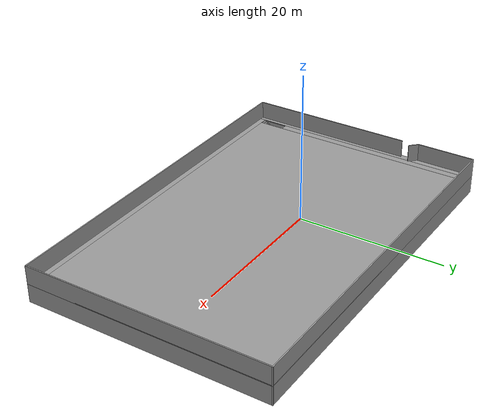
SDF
<?xml version='1.0'?>
<sdf version='1.7'>
  <model name='cangku'>
    <pose>6.96758 -0.634959 0 0 -0 0</pose>
    <link name='Floor_0'>
      <pose>-0 -0 2.5 0 -0 0</pose>
      <visual name='Floor_0_Visual_0'>
        <pose>-24.4146 0 0.05 0 -0 0</pose>
        <geometry>
          <box>
            <size>0.951851 32.75 0.1</size>
          </box>
        </geometry>
        <material>
          <script>
            <uri>file://media/materials/scripts/gazebo.material</uri>
            <name>Gazebo/Grey</name>
          </script>
          <ambient>1 1 1 1</ambient>
        </material>
        <meta>
          <layer>1</layer>
        </meta>
      </visual>
      <collision name='Floor_0_Collision_0'>
        <geometry>
          <box>
            <size>0.951851 32.75 0.1</size>
          </box>
        </geometry>
        <pose>-24.4146 0 0.05 0 -0 0</pose>
      </collision>
      <visual name='Floor_0_Visual_1'>
        <pose>0.475926 -15.9237 0.05 0 -0 0</pose>
        <geometry>
          <box>
            <size>48.8292 0.902595 0.1</size>
          </box>
        </geometry>
        <material>
          <script>
            <uri>file://media/materials/scripts/gazebo.material</uri>
            <name>Gazebo/Grey</name>
          </script>
          <ambient>1 1 1 1</ambient>
        </material>
        <meta>
          <layer>1</layer>
        </meta>
      </visual>
      <collision name='Floor_0_Collision_1'>
        <geometry>
          <box>
            <size>48.8292 0.902595 0.1</size>
          </box>
        </geometry>
        <pose>0.475926 -15.9237 0.05 0 -0 0</pose>
      </collision>
      <visual name='Floor_0_Visual_2'>
        <pose>0.975926 0.451298 0.05 0 -0 0</pose>
        <geometry>
          <box>
            <size>47.8292 31.8474 0.1</size>
          </box>
        </geometry>
        <material>
          <script>
            <uri>file://media/materials/scripts/gazebo.material</uri>
            <name>Gazebo/Grey</name>
          </script>
          <ambient>1 1 1 1</ambient>
        </material>
        <meta>
          <layer>1</layer>
        </meta>
      </visual>
      <collision name='Floor_0_Collision_2'>
        <geometry>
          <box>
            <size>47.8292 31.8474 0.1</size>
          </box>
        </geometry>
        <pose>0.975926 0.451298 0.05 0 -0 0</pose>
      </collision>
      <visual name='Floor_0_Visual_3'>
        <pose>-23.4387 2.2013 0.05 0 -0 0</pose>
        <geometry>
          <box>
            <size>1 28.3474 0.1</size>
          </box>
        </geometry>
        <material>
          <script>
            <uri>file://media/materials/scripts/gazebo.material</uri>
            <name>Gazebo/Grey</name>
          </script>
          <ambient>1 1 1 1</ambient>
        </material>
        <meta>
          <layer>1</layer>
        </meta>
      </visual>
      <collision name='Floor_0_Collision_3'>
        <geometry>
          <box>
            <size>1 28.3474 0.1</size>
          </box>
        </geometry>
        <pose>-23.4387 2.2013 0.05 0 -0 0</pose>
      </collision>
    </link>
    <link name='Stairs_0'>
      <visual name='Stairs_0_Visual_0'>
        <pose>-23.4387 -12.0891 0.083333 0 -0 0</pose>
        <geometry>
          <box>
            <size>1 0.233333 0.166667</size>
          </box>
        </geometry>
        <material>
          <script>
            <uri>file://media/materials/scripts/gazebo.material</uri>
            <name>Gazebo/Grey</name>
          </script>
          <ambient>1 1 1 1</ambient>
        </material>
        <meta>
          <layer>0</layer>
        </meta>
      </visual>
      <collision name='Stairs_0_Collision_0'>
        <geometry>
          <box>
            <size>1 0.233333 0.166667</size>
          </box>
        </geometry>
        <pose>-23.4387 -12.0891 0.083333 0 -0 0</pose>
      </collision>
      <visual name='Stairs_0_Visual_1'>
        <pose>-23.4387 -12.3224 0.25 0 -0 0</pose>
        <geometry>
          <box>
            <size>1 0.233333 0.166667</size>
          </box>
        </geometry>
        <material>
          <script>
            <uri>file://media/materials/scripts/gazebo.material</uri>
            <name>Gazebo/Grey</name>
          </script>
          <ambient>1 1 1 1</ambient>
        </material>
        <meta>
          <layer>0</layer>
        </meta>
      </visual>
      <collision name='Stairs_0_Collision_1'>
        <geometry>
          <box>
            <size>1 0.233333 0.166667</size>
          </box>
        </geometry>
        <pose>-23.4387 -12.3224 0.25 0 -0 0</pose>
      </collision>
      <visual name='Stairs_0_Visual_2'>
        <pose>-23.4387 -12.5557 0.416667 0 -0 0</pose>
        <geometry>
          <box>
            <size>1 0.233333 0.166667</size>
          </box>
        </geometry>
        <material>
          <script>
            <uri>file://media/materials/scripts/gazebo.material</uri>
            <name>Gazebo/Grey</name>
          </script>
          <ambient>1 1 1 1</ambient>
        </material>
        <meta>
          <layer>0</layer>
        </meta>
      </visual>
      <collision name='Stairs_0_Collision_2'>
        <geometry>
          <box>
            <size>1 0.233333 0.166667</size>
          </box>
        </geometry>
        <pose>-23.4387 -12.5557 0.416667 0 -0 0</pose>
      </collision>
      <visual name='Stairs_0_Visual_3'>
        <pose>-23.4387 -12.7891 0.583333 0 -0 0</pose>
        <geometry>
          <box>
            <size>1 0.233333 0.166667</size>
          </box>
        </geometry>
        <material>
          <script>
            <uri>file://media/materials/scripts/gazebo.material</uri>
            <name>Gazebo/Grey</name>
          </script>
          <ambient>1 1 1 1</ambient>
        </material>
        <meta>
          <layer>0</layer>
        </meta>
      </visual>
      <collision name='Stairs_0_Collision_3'>
        <geometry>
          <box>
            <size>1 0.233333 0.166667</size>
          </box>
        </geometry>
        <pose>-23.4387 -12.7891 0.583333 0 -0 0</pose>
      </collision>
      <visual name='Stairs_0_Visual_4'>
        <pose>-23.4387 -13.0224 0.75 0 -0 0</pose>
        <geometry>
          <box>
            <size>1 0.233333 0.166667</size>
          </box>
        </geometry>
        <material>
          <script>
            <uri>file://media/materials/scripts/gazebo.material</uri>
            <name>Gazebo/Grey</name>
          </script>
          <ambient>1 1 1 1</ambient>
        </material>
        <meta>
          <layer>0</layer>
        </meta>
      </visual>
      <collision name='Stairs_0_Collision_4'>
        <geometry>
          <box>
            <size>1 0.233333 0.166667</size>
          </box>
        </geometry>
        <pose>-23.4387 -13.0224 0.75 0 -0 0</pose>
      </collision>
      <visual name='Stairs_0_Visual_5'>
        <pose>-23.4387 -13.2557 0.916667 0 -0 0</pose>
        <geometry>
          <box>
            <size>1 0.233333 0.166667</size>
          </box>
        </geometry>
        <material>
          <script>
            <uri>file://media/materials/scripts/gazebo.material</uri>
            <name>Gazebo/Grey</name>
          </script>
          <ambient>1 1 1 1</ambient>
        </material>
        <meta>
          <layer>0</layer>
        </meta>
      </visual>
      <collision name='Stairs_0_Collision_5'>
        <geometry>
          <box>
            <size>1 0.233333 0.166667</size>
          </box>
        </geometry>
        <pose>-23.4387 -13.2557 0.916667 0 -0 0</pose>
      </collision>
      <visual name='Stairs_0_Visual_6'>
        <pose>-23.4387 -13.4891 1.08333 0 -0 0</pose>
        <geometry>
          <box>
            <size>1 0.233333 0.166667</size>
          </box>
        </geometry>
        <material>
          <script>
            <uri>file://media/materials/scripts/gazebo.material</uri>
            <name>Gazebo/Grey</name>
          </script>
          <ambient>1 1 1 1</ambient>
        </material>
        <meta>
          <layer>0</layer>
        </meta>
      </visual>
      <collision name='Stairs_0_Collision_6'>
        <geometry>
          <box>
            <size>1 0.233333 0.166667</size>
          </box>
        </geometry>
        <pose>-23.4387 -13.4891 1.08333 0 -0 0</pose>
      </collision>
      <visual name='Stairs_0_Visual_7'>
        <pose>-23.4387 -13.7224 1.25 0 -0 0</pose>
        <geometry>
          <box>
            <size>1 0.233333 0.166667</size>
          </box>
        </geometry>
        <material>
          <script>
            <uri>file://media/materials/scripts/gazebo.material</uri>
            <name>Gazebo/Grey</name>
          </script>
          <ambient>1 1 1 1</ambient>
        </material>
        <meta>
          <layer>0</layer>
        </meta>
      </visual>
      <collision name='Stairs_0_Collision_7'>
        <geometry>
          <box>
            <size>1 0.233333 0.166667</size>
          </box>
        </geometry>
        <pose>-23.4387 -13.7224 1.25 0 -0 0</pose>
      </collision>
      <visual name='Stairs_0_Visual_8'>
        <pose>-23.4387 -13.9557 1.41667 0 -0 0</pose>
        <geometry>
          <box>
            <size>1 0.233333 0.166667</size>
          </box>
        </geometry>
        <material>
          <script>
            <uri>file://media/materials/scripts/gazebo.material</uri>
            <name>Gazebo/Grey</name>
          </script>
          <ambient>1 1 1 1</ambient>
        </material>
        <meta>
          <layer>0</layer>
        </meta>
      </visual>
      <collision name='Stairs_0_Collision_8'>
        <geometry>
          <box>
            <size>1 0.233333 0.166667</size>
          </box>
        </geometry>
        <pose>-23.4387 -13.9557 1.41667 0 -0 0</pose>
      </collision>
      <visual name='Stairs_0_Visual_9'>
        <pose>-23.4387 -14.1891 1.58333 0 -0 0</pose>
        <geometry>
          <box>
            <size>1 0.233333 0.166667</size>
          </box>
        </geometry>
        <material>
          <script>
            <uri>file://media/materials/scripts/gazebo.material</uri>
            <name>Gazebo/Grey</name>
          </script>
          <ambient>1 1 1 1</ambient>
        </material>
        <meta>
          <layer>0</layer>
        </meta>
      </visual>
      <collision name='Stairs_0_Collision_9'>
        <geometry>
          <box>
            <size>1 0.233333 0.166667</size>
          </box>
        </geometry>
        <pose>-23.4387 -14.1891 1.58333 0 -0 0</pose>
      </collision>
      <visual name='Stairs_0_Visual_10'>
        <pose>-23.4387 -14.4224 1.75 0 -0 0</pose>
        <geometry>
          <box>
            <size>1 0.233333 0.166667</size>
          </box>
        </geometry>
        <material>
          <script>
            <uri>file://media/materials/scripts/gazebo.material</uri>
            <name>Gazebo/Grey</name>
          </script>
          <ambient>1 1 1 1</ambient>
        </material>
        <meta>
          <layer>0</layer>
        </meta>
      </visual>
      <collision name='Stairs_0_Collision_10'>
        <geometry>
          <box>
            <size>1 0.233333 0.166667</size>
          </box>
        </geometry>
        <pose>-23.4387 -14.4224 1.75 0 -0 0</pose>
      </collision>
      <visual name='Stairs_0_Visual_11'>
        <pose>-23.4387 -14.6557 1.91667 0 -0 0</pose>
        <geometry>
          <box>
            <size>1 0.233333 0.166667</size>
          </box>
        </geometry>
        <material>
          <script>
            <uri>file://media/materials/scripts/gazebo.material</uri>
            <name>Gazebo/Grey</name>
          </script>
          <ambient>1 1 1 1</ambient>
        </material>
        <meta>
          <layer>0</layer>
        </meta>
      </visual>
      <collision name='Stairs_0_Collision_11'>
        <geometry>
          <box>
            <size>1 0.233333 0.166667</size>
          </box>
        </geometry>
        <pose>-23.4387 -14.6557 1.91667 0 -0 0</pose>
      </collision>
      <visual name='Stairs_0_Visual_12'>
        <pose>-23.4387 -14.8891 2.08333 0 -0 0</pose>
        <geometry>
          <box>
            <size>1 0.233333 0.166667</size>
          </box>
        </geometry>
        <material>
          <script>
            <uri>file://media/materials/scripts/gazebo.material</uri>
            <name>Gazebo/Grey</name>
          </script>
          <ambient>1 1 1 1</ambient>
        </material>
        <meta>
          <layer>0</layer>
        </meta>
      </visual>
      <collision name='Stairs_0_Collision_12'>
        <geometry>
          <box>
            <size>1 0.233333 0.166667</size>
          </box>
        </geometry>
        <pose>-23.4387 -14.8891 2.08333 0 -0 0</pose>
      </collision>
      <visual name='Stairs_0_Visual_13'>
        <pose>-23.4387 -15.1224 2.25 0 -0 0</pose>
        <geometry>
          <box>
            <size>1 0.233333 0.166667</size>
          </box>
        </geometry>
        <material>
          <script>
            <uri>file://media/materials/scripts/gazebo.material</uri>
            <name>Gazebo/Grey</name>
          </script>
          <ambient>1 1 1 1</ambient>
        </material>
        <meta>
          <layer>0</layer>
        </meta>
      </visual>
      <collision name='Stairs_0_Collision_13'>
        <geometry>
          <box>
            <size>1 0.233333 0.166667</size>
          </box>
        </geometry>
        <pose>-23.4387 -15.1224 2.25 0 -0 0</pose>
      </collision>
      <visual name='Stairs_0_Visual_14'>
        <pose>-23.4387 -15.3557 2.41667 0 -0 0</pose>
        <geometry>
          <box>
            <size>1 0.233333 0.166667</size>
          </box>
        </geometry>
        <material>
          <script>
            <uri>file://media/materials/scripts/gazebo.material</uri>
            <name>Gazebo/Grey</name>
          </script>
          <ambient>1 1 1 1</ambient>
        </material>
        <meta>
          <layer>0</layer>
        </meta>
      </visual>
      <collision name='Stairs_0_Collision_14'>
        <geometry>
          <box>
            <size>1 0.233333 0.166667</size>
          </box>
        </geometry>
        <pose>-23.4387 -15.3557 2.41667 0 -0 0</pose>
      </collision>
    </link>
    <link name='Wall_10'>
      <collision name='Wall_10_Collision'>
        <geometry>
          <box>
            <size>49.5 0.15 2.5</size>
          </box>
        </geometry>
        <pose>0 0 1.25 0 -0 0</pose>
      </collision>
      <visual name='Wall_10_Visual'>
        <pose>0 0 1.25 0 -0 0</pose>
        <geometry>
          <box>
            <size>49.5 0.15 2.5</size>
          </box>
        </geometry>
        <material>
          <script>
            <uri>file://media/materials/scripts/gazebo.material</uri>
            <name>Gazebo/Grey</name>
          </script>
          <ambient>1 1 1 1</ambient>
        </material>
        <meta>
          <layer>1</layer>
        </meta>
      </visual>
      <pose>0.140532 -16.3 2.5 0 -0 0</pose>
    </link>
    <link name='Wall_11'>
      <collision name='Wall_11_Collision'>
        <geometry>
          <box>
            <size>32.75 0.15 2.5</size>
          </box>
        </geometry>
        <pose>0 0 1.25 0 -0 0</pose>
      </collision>
      <visual name='Wall_11_Visual'>
        <pose>0 0 1.25 0 -0 0</pose>
        <geometry>
          <box>
            <size>32.75 0.15 2.5</size>
          </box>
        </geometry>
        <material>
          <script>
            <uri>file://media/materials/scripts/gazebo.material</uri>
            <name>Gazebo/Grey</name>
          </script>
          <ambient>1 1 1 1</ambient>
        </material>
        <meta>
          <layer>1</layer>
        </meta>
      </visual>
      <pose>24.8155 -0 2.5 0 -0 1.5708</pose>
    </link>
    <link name='Wall_12'>
      <collision name='Wall_12_Collision'>
        <geometry>
          <box>
            <size>49.75 0.15 2.5</size>
          </box>
        </geometry>
        <pose>0 0 1.25 0 -0 0</pose>
      </collision>
      <visual name='Wall_12_Visual'>
        <pose>0 0 1.25 0 -0 0</pose>
        <geometry>
          <box>
            <size>49.75 0.15 2.5</size>
          </box>
        </geometry>
        <material>
          <script>
            <uri>file://media/materials/scripts/gazebo.material</uri>
            <name>Gazebo/Grey</name>
          </script>
          <ambient>1 1 1 1</ambient>
        </material>
        <meta>
          <layer>1</layer>
        </meta>
      </visual>
      <pose>0.015532 16.3 2.5 0 -0 3.14159</pose>
    </link>
    <link name='Wall_13'>
      <collision name='Wall_13_Collision'>
        <geometry>
          <box>
            <size>8 0.15 2.5</size>
          </box>
        </geometry>
        <pose>0 0 1.25 0 -0 0</pose>
      </collision>
      <visual name='Wall_13_Visual'>
        <pose>0 0 1.25 0 -0 0</pose>
        <geometry>
          <box>
            <size>8 0.15 2.5</size>
          </box>
        </geometry>
        <material>
          <script>
            <uri>file://media/materials/scripts/gazebo.material</uri>
            <name>Gazebo/Grey</name>
          </script>
          <ambient>1 1 1 1</ambient>
        </material>
        <meta>
          <layer>1</layer>
        </meta>
      </visual>
      <pose>-24.7845 12.375 2.5 0 -0 -1.5708</pose>
    </link>
    <link name='Wall_14'>
      <collision name='Wall_14_Collision'>
        <geometry>
          <box>
            <size>1.5 0.15 2.5</size>
          </box>
        </geometry>
        <pose>0 0 1.25 0 -0 0</pose>
      </collision>
      <visual name='Wall_14_Visual'>
        <pose>0 0 1.25 0 -0 0</pose>
        <geometry>
          <box>
            <size>1.5 0.15 2.5</size>
          </box>
        </geometry>
        <material>
          <script>
            <uri>file://media/materials/scripts/gazebo.material</uri>
            <name>Gazebo/Grey</name>
          </script>
          <ambient>1 1 1 1</ambient>
        </material>
        <meta>
          <layer>1</layer>
        </meta>
      </visual>
      <pose>-24.3072 7.9727 2.5 0 -0 -0.785398</pose>
    </link>
    <link name='Wall_2'>
      <pose>-24.5345 -5.125 0 0 -0 -1.5708</pose>
      <visual name='Wall_2_Visual_0'>
        <pose>-10.1118 0 1.25 0 -0 0</pose>
        <geometry>
          <box>
            <size>2.27647 0.15 2.5</size>
          </box>
        </geometry>
        <material>
          <script>
            <uri>file://media/materials/scripts/gazebo.material</uri>
            <name>Gazebo/Grey</name>
          </script>
          <ambient>1 1 1 1</ambient>
        </material>
        <meta>
          <layer>0</layer>
        </meta>
      </visual>
      <collision name='Wall_2_Collision_0'>
        <geometry>
          <box>
            <size>2.27647 0.15 2.5</size>
          </box>
        </geometry>
        <pose>-10.1118 0 1.25 0 -0 0</pose>
      </collision>
      <visual name='Wall_2_Visual_1'>
        <pose>1.13824 0 0.25 0 -0 0</pose>
        <geometry>
          <box>
            <size>20.2235 0.15 0.5</size>
          </box>
        </geometry>
        <material>
          <script>
            <uri>file://media/materials/scripts/gazebo.material</uri>
            <name>Gazebo/Grey</name>
          </script>
          <ambient>1 1 1 1</ambient>
        </material>
        <meta>
          <layer>0</layer>
        </meta>
      </visual>
      <collision name='Wall_2_Collision_1'>
        <geometry>
          <box>
            <size>20.2235 0.15 0.5</size>
          </box>
        </geometry>
        <pose>1.13824 0 0.25 0 -0 0</pose>
      </collision>
      <visual name='Wall_2_Visual_2'>
        <pose>1.53824 0 1.5 0 -0 0</pose>
        <geometry>
          <box>
            <size>19.4235 0.15 2</size>
          </box>
        </geometry>
        <material>
          <script>
            <uri>file://media/materials/scripts/gazebo.material</uri>
            <name>Gazebo/Grey</name>
          </script>
          <ambient>1 1 1 1</ambient>
        </material>
        <meta>
          <layer>0</layer>
        </meta>
      </visual>
      <collision name='Wall_2_Collision_2'>
        <geometry>
          <box>
            <size>19.4235 0.15 2</size>
          </box>
        </geometry>
        <pose>1.53824 0 1.5 0 -0 0</pose>
      </collision>
      <visual name='Wall_2_Visual_3'>
        <pose>-8.57353 0 1.9 0 -0 0</pose>
        <geometry>
          <box>
            <size>0.8 0.15 1.2</size>
          </box>
        </geometry>
        <material>
          <script>
            <uri>file://media/materials/scripts/gazebo.material</uri>
            <name>Gazebo/Grey</name>
          </script>
          <ambient>1 1 1 1</ambient>
        </material>
        <meta>
          <layer>0</layer>
        </meta>
      </visual>
      <collision name='Wall_2_Collision_3'>
        <geometry>
          <box>
            <size>0.8 0.15 1.2</size>
          </box>
        </geometry>
        <pose>-8.57353 0 1.9 0 -0 0</pose>
      </collision>
    </link>
    <link name='Wall_3'>
      <collision name='Wall_3_Collision'>
        <geometry>
          <box>
            <size>49.5 0.15 2.5</size>
          </box>
        </geometry>
        <pose>0 0 1.25 0 -0 0</pose>
      </collision>
      <visual name='Wall_3_Visual'>
        <pose>0 0 1.25 0 -0 0</pose>
        <geometry>
          <box>
            <size>49.5 0.15 2.5</size>
          </box>
        </geometry>
        <material>
          <script>
            <uri>file://media/materials/scripts/gazebo.material</uri>
            <name>Gazebo/Grey</name>
          </script>
          <ambient>1 1 1 1</ambient>
        </material>
        <meta>
          <layer>0</layer>
        </meta>
      </visual>
      <pose>0.140532 -16.3 0 0 -0 0</pose>
    </link>
    <link name='Wall_4'>
      <collision name='Wall_4_Collision'>
        <geometry>
          <box>
            <size>32.75 0.15 2.5</size>
          </box>
        </geometry>
        <pose>0 0 1.25 0 -0 0</pose>
      </collision>
      <visual name='Wall_4_Visual'>
        <pose>0 0 1.25 0 -0 0</pose>
        <geometry>
          <box>
            <size>32.75 0.15 2.5</size>
          </box>
        </geometry>
        <material>
          <script>
            <uri>file://media/materials/scripts/gazebo.material</uri>
            <name>Gazebo/Grey</name>
          </script>
          <ambient>1 1 1 1</ambient>
        </material>
        <meta>
          <layer>0</layer>
        </meta>
      </visual>
      <pose>24.8155 -0 0 0 -0 1.5708</pose>
    </link>
    <link name='Wall_5'>
      <collision name='Wall_5_Collision'>
        <geometry>
          <box>
            <size>49.75 0.15 2.5</size>
          </box>
        </geometry>
        <pose>0 0 1.25 0 -0 0</pose>
      </collision>
      <visual name='Wall_5_Visual'>
        <pose>0 0 1.25 0 -0 0</pose>
        <geometry>
          <box>
            <size>49.75 0.15 2.5</size>
          </box>
        </geometry>
        <material>
          <script>
            <uri>file://media/materials/scripts/gazebo.material</uri>
            <name>Gazebo/Grey</name>
          </script>
          <ambient>1 1 1 1</ambient>
        </material>
        <meta>
          <layer>0</layer>
        </meta>
      </visual>
      <pose>0.015532 16.3 0 0 -0 3.14159</pose>
    </link>
    <link name='Wall_6'>
      <collision name='Wall_6_Collision'>
        <geometry>
          <box>
            <size>8 0.15 2.5</size>
          </box>
        </geometry>
        <pose>0 0 1.25 0 -0 0</pose>
      </collision>
      <visual name='Wall_6_Visual'>
        <pose>0 0 1.25 0 -0 0</pose>
        <geometry>
          <box>
            <size>8 0.15 2.5</size>
          </box>
        </geometry>
        <material>
          <script>
            <uri>file://media/materials/scripts/gazebo.material</uri>
            <name>Gazebo/Grey</name>
          </script>
          <ambient>1 1 1 1</ambient>
        </material>
        <meta>
          <layer>0</layer>
        </meta>
      </visual>
      <pose>-24.7845 12.375 0 0 -0 -1.5708</pose>
    </link>
    <link name='Wall_7'>
      <pose>-24.3072 7.9727 0 0 -0 -0.785398</pose>
      <visual name='Wall_7_Visual_0'>
        <pose>-0.631301 0 1.25 0 -0 0</pose>
        <geometry>
          <box>
            <size>0.237397 0.15 2.5</size>
          </box>
        </geometry>
        <material>
          <script>
            <uri>file://media/materials/scripts/gazebo.material</uri>
            <name>Gazebo/Grey</name>
          </script>
          <ambient>1 1 1 1</ambient>
        </material>
        <meta>
          <layer>0</layer>
        </meta>
      </visual>
      <collision name='Wall_7_Collision_0'>
        <geometry>
          <box>
            <size>0.237397 0.15 2.5</size>
          </box>
        </geometry>
        <pose>-0.631301 0 1.25 0 -0 0</pose>
      </collision>
      <visual name='Wall_7_Visual_1'>
        <pose>0.568699 0 1.25 0 -0 0</pose>
        <geometry>
          <box>
            <size>0.362603 0.15 2.5</size>
          </box>
        </geometry>
        <material>
          <script>
            <uri>file://media/materials/scripts/gazebo.material</uri>
            <name>Gazebo/Grey</name>
          </script>
          <ambient>1 1 1 1</ambient>
        </material>
        <meta>
          <layer>0</layer>
        </meta>
      </visual>
      <collision name='Wall_7_Collision_1'>
        <geometry>
          <box>
            <size>0.362603 0.15 2.5</size>
          </box>
        </geometry>
        <pose>0.568699 0 1.25 0 -0 0</pose>
      </collision>
      <visual name='Wall_7_Visual_2'>
        <pose>-0.062603 0 2.25 0 -0 0</pose>
        <geometry>
          <box>
            <size>0.9 0.15 0.5</size>
          </box>
        </geometry>
        <material>
          <script>
            <uri>file://media/materials/scripts/gazebo.material</uri>
            <name>Gazebo/Grey</name>
          </script>
          <ambient>1 1 1 1</ambient>
        </material>
        <meta>
          <layer>0</layer>
        </meta>
      </visual>
      <collision name='Wall_7_Collision_2'>
        <geometry>
          <box>
            <size>0.9 0.15 0.5</size>
          </box>
        </geometry>
        <pose>-0.062603 0 2.25 0 -0 0</pose>
      </collision>
    </link>
    <link name='Wall_9'>
      <collision name='Wall_9_Collision'>
        <geometry>
          <box>
            <size>22.5 0.15 2.5</size>
          </box>
        </geometry>
        <pose>0 0 1.25 0 -0 0</pose>
      </collision>
      <visual name='Wall_9_Visual'>
        <pose>0 0 1.25 0 -0 0</pose>
        <geometry>
          <box>
            <size>22.5 0.15 2.5</size>
          </box>
        </geometry>
        <material>
          <script>
            <uri>file://media/materials/scripts/gazebo.material</uri>
            <name>Gazebo/Grey</name>
          </script>
          <ambient>1 1 1 1</ambient>
        </material>
        <meta>
          <layer>1</layer>
        </meta>
      </visual>
      <pose>-24.5345 -5.125 2.5 0 -0 -1.5708</pose>
    </link>
    <static>1</static>
  </model>
</sdf>
